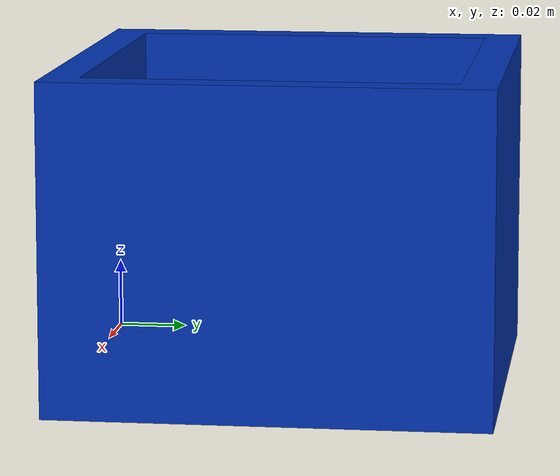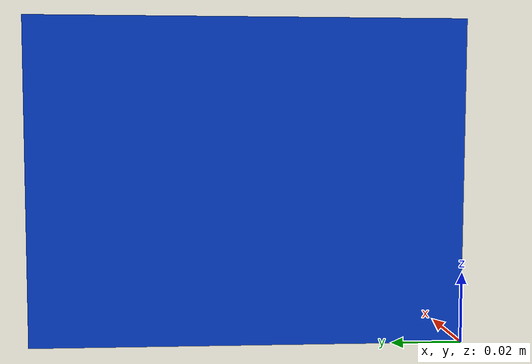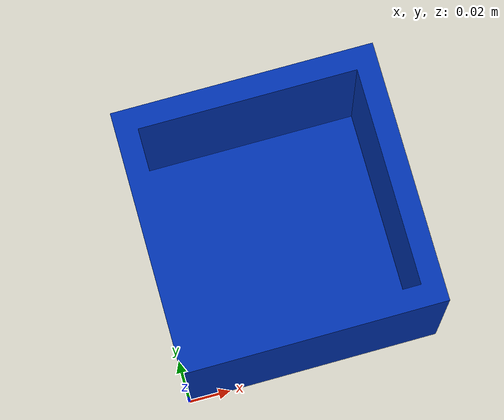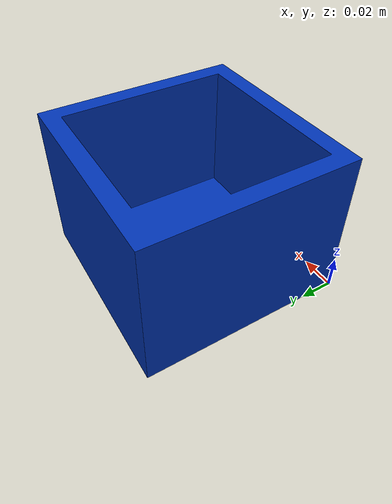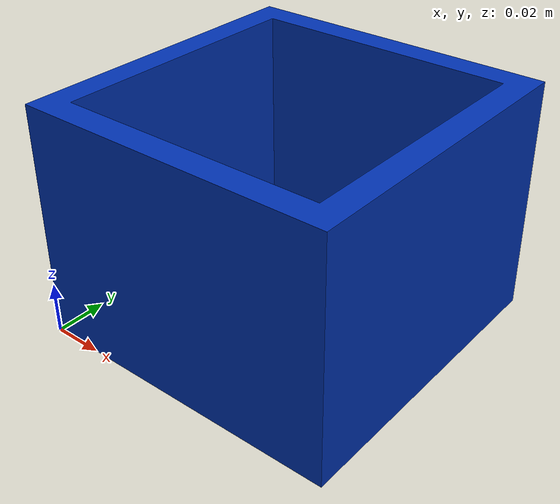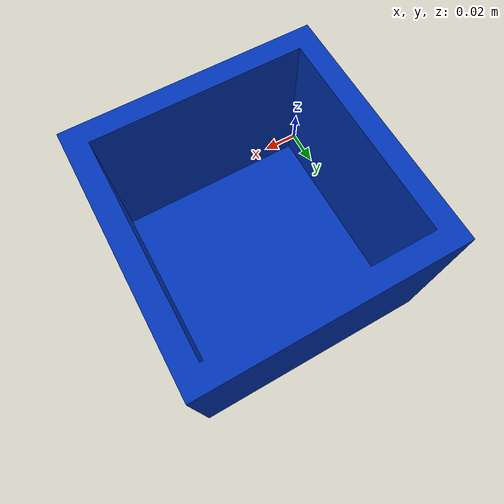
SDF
<?xml version="1.0" ?>
<sdf version="1.9">
  <model name="transport_box">
    <static>false</static>
    <link name="link">
      <inertial>
        <mass>0.4</mass>
        <pose>0.06096 0.06096 0.04572 0 0 0</pose>
        <inertia>
          <ixx>7.68e-04</ixx>
          <ixy>0</ixy>
          <ixz>0</ixz>
          <iyy>7.68e-04</iyy>
          <iyz>0</iyz>
          <izz>9.6e-04</izz>
        </inertia>
      </inertial>
      <collision name="collision">
        <pose>0 0 0.0 0 0 0</pose>
        <geometry>
          <mesh>
            <uri>meshes/TransportBox.stl</uri>
            <scale>0.4 0.4 0.4</scale>
          </mesh>
        </geometry>
      </collision>
      <visual name="visual">
        <geometry>
          <mesh>
            <uri>meshes/TransportBox.stl</uri>
            <scale>0.4 0.4 0.4</scale>
          </mesh>
        </geometry>
        <material>
          <ambient>0.0 0.1 0.4 1</ambient>
          <diffuse>0.0 0.2 0.7 1</diffuse>
          <specular>0.3 0.4 0.9 1</specular>
        </material>
      </visual>
      <sensor name="transport_box_contact" type="contact">
        <contact>
          <collision>collision</collision>
        </contact>
        <always_on>true</always_on>
        <update_rate>30</update_rate>
      </sensor>
    </link>
    <plugin filename="ignition-gazebo-contact-system" name="gz::sim::systems::Contact"/>
  </model>
</sdf>
